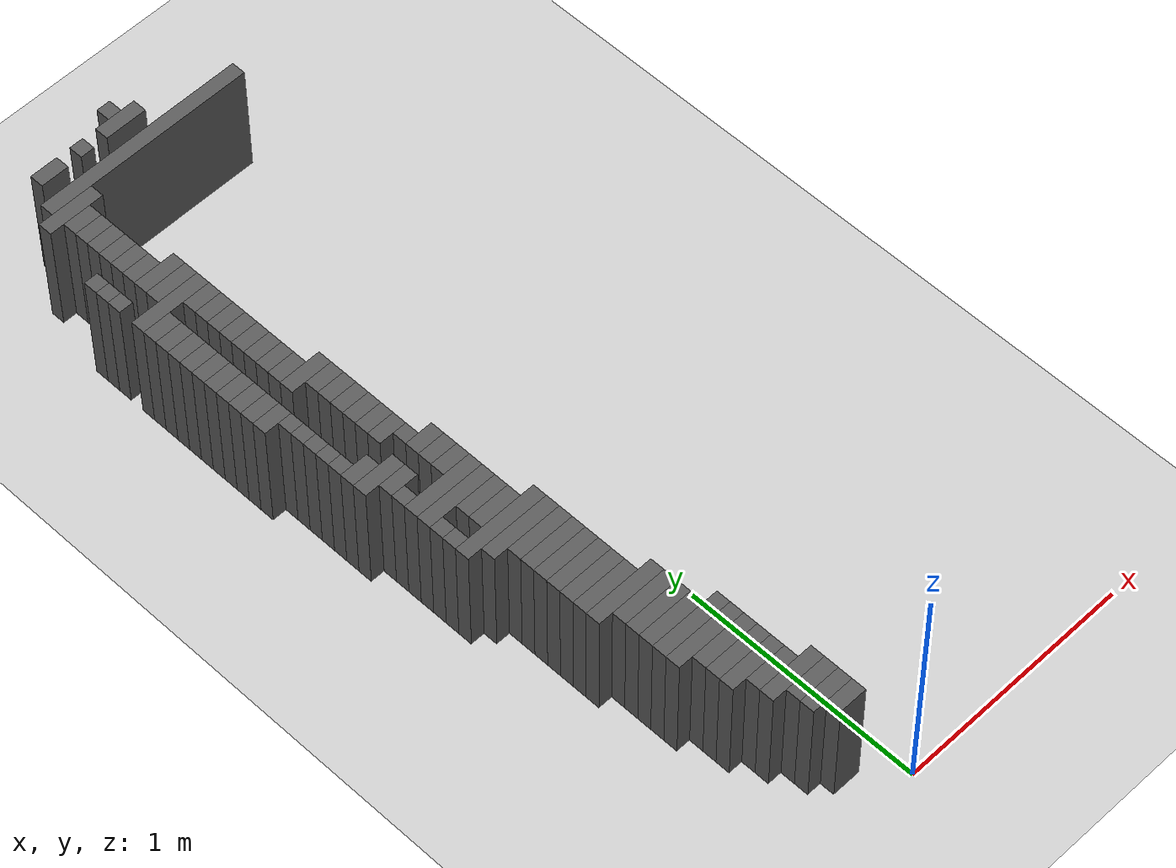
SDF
<sdf version="1.6">
 <world name="my_map">
  <include><uri>model://sun</uri></include>
  <model name="ground_plane">
   <static>true</static>
   <link name="link">
    <collision name="collision">
     <geometry><plane><normal>0 0 1</normal><size>20 20</size></plane></geometry>
    </collision>
    <visual name="visual">
     <geometry><plane><normal>0 0 1</normal><size>20 20</size></plane></geometry>
     <material>
      <script><uri>file://media/materials/scripts/gazebo.material</uri><name>Gazebo/Grey</name></script>
     </material>
    </visual>
   </link>
  </model>
  <model name="my_map_walls">
   <static>true</static>
   <link name="wall_015">
    <pose>-0.2100 3.6420 0.2500 0 0 0</pose>
    <collision name="collision"><geometry><box><size>0.0600 0.0600 0.5000</size></box></geometry></collision>
    <visual name="visual">
     <geometry><box><size>0.0600 0.0600 0.5000</size></box></geometry>
     <material><ambient>0.25 0.25 0.25 1</ambient><diffuse>0.35 0.35 0.35 1</diffuse></material>
    </visual>
   </link>
   <link name="wall_020">
    <pose>-0.5400 3.5820 0.2500 0 0 0</pose>
    <collision name="collision"><geometry><box><size>0.1200 0.0600 0.5000</size></box></geometry></collision>
    <visual name="visual">
     <geometry><box><size>0.1200 0.0600 0.5000</size></box></geometry>
     <material><ambient>0.25 0.25 0.25 1</ambient><diffuse>0.35 0.35 0.35 1</diffuse></material>
    </visual>
   </link>
   <link name="wall_021">
    <pose>-0.3900 3.5820 0.2500 0 0 0</pose>
    <collision name="collision"><geometry><box><size>0.0600 0.0600 0.5000</size></box></geometry></collision>
    <visual name="visual">
     <geometry><box><size>0.0600 0.0600 0.5000</size></box></geometry>
     <material><ambient>0.25 0.25 0.25 1</ambient><diffuse>0.35 0.35 0.35 1</diffuse></material>
    </visual>
   </link>
   <link name="wall_022">
    <pose>-0.2100 3.5820 0.2500 0 0 0</pose>
    <collision name="collision"><geometry><box><size>0.1800 0.0600 0.5000</size></box></geometry></collision>
    <visual name="visual">
     <geometry><box><size>0.1800 0.0600 0.5000</size></box></geometry>
     <material><ambient>0.25 0.25 0.25 1</ambient><diffuse>0.35 0.35 0.35 1</diffuse></material>
    </visual>
   </link>
   <link name="wall_029">
    <pose>-0.2100 3.4620 0.2500 0 0 0</pose>
    <collision name="collision"><geometry><box><size>0.9000 0.0600 0.5000</size></box></geometry></collision>
    <visual name="visual">
     <geometry><box><size>0.9000 0.0600 0.5000</size></box></geometry>
     <material><ambient>0.25 0.25 0.25 1</ambient><diffuse>0.35 0.35 0.35 1</diffuse></material>
    </visual>
   </link>
   <link name="wall_032">
    <pose>-0.6000 3.4020 0.2500 0 0 0</pose>
    <collision name="collision"><geometry><box><size>0.2400 0.0600 0.5000</size></box></geometry></collision>
    <visual name="visual">
     <geometry><box><size>0.2400 0.0600 0.5000</size></box></geometry>
     <material><ambient>0.25 0.25 0.25 1</ambient><diffuse>0.35 0.35 0.35 1</diffuse></material>
    </visual>
   </link>
   <link name="wall_035">
    <pose>-0.6000 3.3420 0.2500 0 0 0</pose>
    <collision name="collision"><geometry><box><size>0.1200 0.0600 0.5000</size></box></geometry></collision>
    <visual name="visual">
     <geometry><box><size>0.1200 0.0600 0.5000</size></box></geometry>
     <material><ambient>0.25 0.25 0.25 1</ambient><diffuse>0.35 0.35 0.35 1</diffuse></material>
    </visual>
   </link>
   <link name="wall_038">
    <pose>-0.6000 3.2820 0.2500 0 0 0</pose>
    <collision name="collision"><geometry><box><size>0.1200 0.0600 0.5000</size></box></geometry></collision>
    <visual name="visual">
     <geometry><box><size>0.1200 0.0600 0.5000</size></box></geometry>
     <material><ambient>0.25 0.25 0.25 1</ambient><diffuse>0.35 0.35 0.35 1</diffuse></material>
    </visual>
   </link>
   <link name="wall_041">
    <pose>-0.6000 3.2220 0.2500 0 0 0</pose>
    <collision name="collision"><geometry><box><size>0.1200 0.0600 0.5000</size></box></geometry></collision>
    <visual name="visual">
     <geometry><box><size>0.1200 0.0600 0.5000</size></box></geometry>
     <material><ambient>0.25 0.25 0.25 1</ambient><diffuse>0.35 0.35 0.35 1</diffuse></material>
    </visual>
   </link>
   <link name="wall_044">
    <pose>-0.6000 3.1620 0.2500 0 0 0</pose>
    <collision name="collision"><geometry><box><size>0.1200 0.0600 0.5000</size></box></geometry></collision>
    <visual name="visual">
     <geometry><box><size>0.1200 0.0600 0.5000</size></box></geometry>
     <material><ambient>0.25 0.25 0.25 1</ambient><diffuse>0.35 0.35 0.35 1</diffuse></material>
    </visual>
   </link>
   <link name="wall_046">
    <pose>-0.7500 3.1020 0.2500 0 0 0</pose>
    <collision name="collision"><geometry><box><size>0.0600 0.0600 0.5000</size></box></geometry></collision>
    <visual name="visual">
     <geometry><box><size>0.0600 0.0600 0.5000</size></box></geometry>
     <material><ambient>0.25 0.25 0.25 1</ambient><diffuse>0.35 0.35 0.35 1</diffuse></material>
    </visual>
   </link>
   <link name="wall_047">
    <pose>-0.6000 3.1020 0.2500 0 0 0</pose>
    <collision name="collision"><geometry><box><size>0.1200 0.0600 0.5000</size></box></geometry></collision>
    <visual name="visual">
     <geometry><box><size>0.1200 0.0600 0.5000</size></box></geometry>
     <material><ambient>0.25 0.25 0.25 1</ambient><diffuse>0.35 0.35 0.35 1</diffuse></material>
    </visual>
   </link>
   <link name="wall_049">
    <pose>-0.7500 3.0420 0.2500 0 0 0</pose>
    <collision name="collision"><geometry><box><size>0.0600 0.0600 0.5000</size></box></geometry></collision>
    <visual name="visual">
     <geometry><box><size>0.0600 0.0600 0.5000</size></box></geometry>
     <material><ambient>0.25 0.25 0.25 1</ambient><diffuse>0.35 0.35 0.35 1</diffuse></material>
    </visual>
   </link>
   <link name="wall_050">
    <pose>-0.6000 3.0420 0.2500 0 0 0</pose>
    <collision name="collision"><geometry><box><size>0.1200 0.0600 0.5000</size></box></geometry></collision>
    <visual name="visual">
     <geometry><box><size>0.1200 0.0600 0.5000</size></box></geometry>
     <material><ambient>0.25 0.25 0.25 1</ambient><diffuse>0.35 0.35 0.35 1</diffuse></material>
    </visual>
   </link>
   <link name="wall_052">
    <pose>-0.7500 2.9820 0.2500 0 0 0</pose>
    <collision name="collision"><geometry><box><size>0.0600 0.0600 0.5000</size></box></geometry></collision>
    <visual name="visual">
     <geometry><box><size>0.0600 0.0600 0.5000</size></box></geometry>
     <material><ambient>0.25 0.25 0.25 1</ambient><diffuse>0.35 0.35 0.35 1</diffuse></material>
    </visual>
   </link>
   <link name="wall_053">
    <pose>-0.5700 2.9820 0.2500 0 0 0</pose>
    <collision name="collision"><geometry><box><size>0.1800 0.0600 0.5000</size></box></geometry></collision>
    <visual name="visual">
     <geometry><box><size>0.1800 0.0600 0.5000</size></box></geometry>
     <material><ambient>0.25 0.25 0.25 1</ambient><diffuse>0.35 0.35 0.35 1</diffuse></material>
    </visual>
   </link>
   <link name="wall_055">
    <pose>-0.5700 2.9220 0.2500 0 0 0</pose>
    <collision name="collision"><geometry><box><size>0.1800 0.0600 0.5000</size></box></geometry></collision>
    <visual name="visual">
     <geometry><box><size>0.1800 0.0600 0.5000</size></box></geometry>
     <material><ambient>0.25 0.25 0.25 1</ambient><diffuse>0.35 0.35 0.35 1</diffuse></material>
    </visual>
   </link>
   <link name="wall_057">
    <pose>-0.6300 2.8620 0.2500 0 0 0</pose>
    <collision name="collision"><geometry><box><size>0.3000 0.0600 0.5000</size></box></geometry></collision>
    <visual name="visual">
     <geometry><box><size>0.3000 0.0600 0.5000</size></box></geometry>
     <material><ambient>0.25 0.25 0.25 1</ambient><diffuse>0.35 0.35 0.35 1</diffuse></material>
    </visual>
   </link>
   <link name="wall_060">
    <pose>-0.7200 2.8020 0.2500 0 0 0</pose>
    <collision name="collision"><geometry><box><size>0.1200 0.0600 0.5000</size></box></geometry></collision>
    <visual name="visual">
     <geometry><box><size>0.1200 0.0600 0.5000</size></box></geometry>
     <material><ambient>0.25 0.25 0.25 1</ambient><diffuse>0.35 0.35 0.35 1</diffuse></material>
    </visual>
   </link>
   <link name="wall_061">
    <pose>-0.5400 2.8020 0.2500 0 0 0</pose>
    <collision name="collision"><geometry><box><size>0.1200 0.0600 0.5000</size></box></geometry></collision>
    <visual name="visual">
     <geometry><box><size>0.1200 0.0600 0.5000</size></box></geometry>
     <material><ambient>0.25 0.25 0.25 1</ambient><diffuse>0.35 0.35 0.35 1</diffuse></material>
    </visual>
   </link>
   <link name="wall_064">
    <pose>-0.7200 2.7420 0.2500 0 0 0</pose>
    <collision name="collision"><geometry><box><size>0.1200 0.0600 0.5000</size></box></geometry></collision>
    <visual name="visual">
     <geometry><box><size>0.1200 0.0600 0.5000</size></box></geometry>
     <material><ambient>0.25 0.25 0.25 1</ambient><diffuse>0.35 0.35 0.35 1</diffuse></material>
    </visual>
   </link>
   <link name="wall_065">
    <pose>-0.5400 2.7420 0.2500 0 0 0</pose>
    <collision name="collision"><geometry><box><size>0.1200 0.0600 0.5000</size></box></geometry></collision>
    <visual name="visual">
     <geometry><box><size>0.1200 0.0600 0.5000</size></box></geometry>
     <material><ambient>0.25 0.25 0.25 1</ambient><diffuse>0.35 0.35 0.35 1</diffuse></material>
    </visual>
   </link>
   <link name="wall_068">
    <pose>-0.7200 2.6820 0.2500 0 0 0</pose>
    <collision name="collision"><geometry><box><size>0.1200 0.0600 0.5000</size></box></geometry></collision>
    <visual name="visual">
     <geometry><box><size>0.1200 0.0600 0.5000</size></box></geometry>
     <material><ambient>0.25 0.25 0.25 1</ambient><diffuse>0.35 0.35 0.35 1</diffuse></material>
    </visual>
   </link>
   <link name="wall_069">
    <pose>-0.5400 2.6820 0.2500 0 0 0</pose>
    <collision name="collision"><geometry><box><size>0.1200 0.0600 0.5000</size></box></geometry></collision>
    <visual name="visual">
     <geometry><box><size>0.1200 0.0600 0.5000</size></box></geometry>
     <material><ambient>0.25 0.25 0.25 1</ambient><diffuse>0.35 0.35 0.35 1</diffuse></material>
    </visual>
   </link>
   <link name="wall_073">
    <pose>-0.7200 2.6220 0.2500 0 0 0</pose>
    <collision name="collision"><geometry><box><size>0.1200 0.0600 0.5000</size></box></geometry></collision>
    <visual name="visual">
     <geometry><box><size>0.1200 0.0600 0.5000</size></box></geometry>
     <material><ambient>0.25 0.25 0.25 1</ambient><diffuse>0.35 0.35 0.35 1</diffuse></material>
    </visual>
   </link>
   <link name="wall_074">
    <pose>-0.5400 2.6220 0.2500 0 0 0</pose>
    <collision name="collision"><geometry><box><size>0.1200 0.0600 0.5000</size></box></geometry></collision>
    <visual name="visual">
     <geometry><box><size>0.1200 0.0600 0.5000</size></box></geometry>
     <material><ambient>0.25 0.25 0.25 1</ambient><diffuse>0.35 0.35 0.35 1</diffuse></material>
    </visual>
   </link>
   <link name="wall_078">
    <pose>-0.7200 2.5620 0.2500 0 0 0</pose>
    <collision name="collision"><geometry><box><size>0.1200 0.0600 0.5000</size></box></geometry></collision>
    <visual name="visual">
     <geometry><box><size>0.1200 0.0600 0.5000</size></box></geometry>
     <material><ambient>0.25 0.25 0.25 1</ambient><diffuse>0.35 0.35 0.35 1</diffuse></material>
    </visual>
   </link>
   <link name="wall_079">
    <pose>-0.5400 2.5620 0.2500 0 0 0</pose>
    <collision name="collision"><geometry><box><size>0.1200 0.0600 0.5000</size></box></geometry></collision>
    <visual name="visual">
     <geometry><box><size>0.1200 0.0600 0.5000</size></box></geometry>
     <material><ambient>0.25 0.25 0.25 1</ambient><diffuse>0.35 0.35 0.35 1</diffuse></material>
    </visual>
   </link>
   <link name="wall_082">
    <pose>-0.7200 2.5020 0.2500 0 0 0</pose>
    <collision name="collision"><geometry><box><size>0.1200 0.0600 0.5000</size></box></geometry></collision>
    <visual name="visual">
     <geometry><box><size>0.1200 0.0600 0.5000</size></box></geometry>
     <material><ambient>0.25 0.25 0.25 1</ambient><diffuse>0.35 0.35 0.35 1</diffuse></material>
    </visual>
   </link>
   <link name="wall_083">
    <pose>-0.5400 2.5020 0.2500 0 0 0</pose>
    <collision name="collision"><geometry><box><size>0.1200 0.0600 0.5000</size></box></geometry></collision>
    <visual name="visual">
     <geometry><box><size>0.1200 0.0600 0.5000</size></box></geometry>
     <material><ambient>0.25 0.25 0.25 1</ambient><diffuse>0.35 0.35 0.35 1</diffuse></material>
    </visual>
   </link>
   <link name="wall_086">
    <pose>-0.7200 2.4420 0.2500 0 0 0</pose>
    <collision name="collision"><geometry><box><size>0.1200 0.0600 0.5000</size></box></geometry></collision>
    <visual name="visual">
     <geometry><box><size>0.1200 0.0600 0.5000</size></box></geometry>
     <material><ambient>0.25 0.25 0.25 1</ambient><diffuse>0.35 0.35 0.35 1</diffuse></material>
    </visual>
   </link>
   <link name="wall_087">
    <pose>-0.5400 2.4420 0.2500 0 0 0</pose>
    <collision name="collision"><geometry><box><size>0.1200 0.0600 0.5000</size></box></geometry></collision>
    <visual name="visual">
     <geometry><box><size>0.1200 0.0600 0.5000</size></box></geometry>
     <material><ambient>0.25 0.25 0.25 1</ambient><diffuse>0.35 0.35 0.35 1</diffuse></material>
    </visual>
   </link>
   <link name="wall_090">
    <pose>-0.7200 2.3820 0.2500 0 0 0</pose>
    <collision name="collision"><geometry><box><size>0.1200 0.0600 0.5000</size></box></geometry></collision>
    <visual name="visual">
     <geometry><box><size>0.1200 0.0600 0.5000</size></box></geometry>
     <material><ambient>0.25 0.25 0.25 1</ambient><diffuse>0.35 0.35 0.35 1</diffuse></material>
    </visual>
   </link>
   <link name="wall_091">
    <pose>-0.5400 2.3820 0.2500 0 0 0</pose>
    <collision name="collision"><geometry><box><size>0.1200 0.0600 0.5000</size></box></geometry></collision>
    <visual name="visual">
     <geometry><box><size>0.1200 0.0600 0.5000</size></box></geometry>
     <material><ambient>0.25 0.25 0.25 1</ambient><diffuse>0.35 0.35 0.35 1</diffuse></material>
    </visual>
   </link>
   <link name="wall_094">
    <pose>-0.7200 2.3220 0.2500 0 0 0</pose>
    <collision name="collision"><geometry><box><size>0.1200 0.0600 0.5000</size></box></geometry></collision>
    <visual name="visual">
     <geometry><box><size>0.1200 0.0600 0.5000</size></box></geometry>
     <material><ambient>0.25 0.25 0.25 1</ambient><diffuse>0.35 0.35 0.35 1</diffuse></material>
    </visual>
   </link>
   <link name="wall_095">
    <pose>-0.5100 2.3220 0.2500 0 0 0</pose>
    <collision name="collision"><geometry><box><size>0.1800 0.0600 0.5000</size></box></geometry></collision>
    <visual name="visual">
     <geometry><box><size>0.1800 0.0600 0.5000</size></box></geometry>
     <material><ambient>0.25 0.25 0.25 1</ambient><diffuse>0.35 0.35 0.35 1</diffuse></material>
    </visual>
   </link>
   <link name="wall_098">
    <pose>-0.7200 2.2620 0.2500 0 0 0</pose>
    <collision name="collision"><geometry><box><size>0.1200 0.0600 0.5000</size></box></geometry></collision>
    <visual name="visual">
     <geometry><box><size>0.1200 0.0600 0.5000</size></box></geometry>
     <material><ambient>0.25 0.25 0.25 1</ambient><diffuse>0.35 0.35 0.35 1</diffuse></material>
    </visual>
   </link>
   <link name="wall_099">
    <pose>-0.4800 2.2620 0.2500 0 0 0</pose>
    <collision name="collision"><geometry><box><size>0.1200 0.0600 0.5000</size></box></geometry></collision>
    <visual name="visual">
     <geometry><box><size>0.1200 0.0600 0.5000</size></box></geometry>
     <material><ambient>0.25 0.25 0.25 1</ambient><diffuse>0.35 0.35 0.35 1</diffuse></material>
    </visual>
   </link>
   <link name="wall_102">
    <pose>-0.6900 2.2020 0.2500 0 0 0</pose>
    <collision name="collision"><geometry><box><size>0.0600 0.0600 0.5000</size></box></geometry></collision>
    <visual name="visual">
     <geometry><box><size>0.0600 0.0600 0.5000</size></box></geometry>
     <material><ambient>0.25 0.25 0.25 1</ambient><diffuse>0.35 0.35 0.35 1</diffuse></material>
    </visual>
   </link>
   <link name="wall_103">
    <pose>-0.4800 2.2020 0.2500 0 0 0</pose>
    <collision name="collision"><geometry><box><size>0.1200 0.0600 0.5000</size></box></geometry></collision>
    <visual name="visual">
     <geometry><box><size>0.1200 0.0600 0.5000</size></box></geometry>
     <material><ambient>0.25 0.25 0.25 1</ambient><diffuse>0.35 0.35 0.35 1</diffuse></material>
    </visual>
   </link>
   <link name="wall_106">
    <pose>-0.6900 2.1420 0.2500 0 0 0</pose>
    <collision name="collision"><geometry><box><size>0.0600 0.0600 0.5000</size></box></geometry></collision>
    <visual name="visual">
     <geometry><box><size>0.0600 0.0600 0.5000</size></box></geometry>
     <material><ambient>0.25 0.25 0.25 1</ambient><diffuse>0.35 0.35 0.35 1</diffuse></material>
    </visual>
   </link>
   <link name="wall_107">
    <pose>-0.4800 2.1420 0.2500 0 0 0</pose>
    <collision name="collision"><geometry><box><size>0.1200 0.0600 0.5000</size></box></geometry></collision>
    <visual name="visual">
     <geometry><box><size>0.1200 0.0600 0.5000</size></box></geometry>
     <material><ambient>0.25 0.25 0.25 1</ambient><diffuse>0.35 0.35 0.35 1</diffuse></material>
    </visual>
   </link>
   <link name="wall_110">
    <pose>-0.6900 2.0820 0.2500 0 0 0</pose>
    <collision name="collision"><geometry><box><size>0.0600 0.0600 0.5000</size></box></geometry></collision>
    <visual name="visual">
     <geometry><box><size>0.0600 0.0600 0.5000</size></box></geometry>
     <material><ambient>0.25 0.25 0.25 1</ambient><diffuse>0.35 0.35 0.35 1</diffuse></material>
    </visual>
   </link>
   <link name="wall_111">
    <pose>-0.4800 2.0820 0.2500 0 0 0</pose>
    <collision name="collision"><geometry><box><size>0.1200 0.0600 0.5000</size></box></geometry></collision>
    <visual name="visual">
     <geometry><box><size>0.1200 0.0600 0.5000</size></box></geometry>
     <material><ambient>0.25 0.25 0.25 1</ambient><diffuse>0.35 0.35 0.35 1</diffuse></material>
    </visual>
   </link>
   <link name="wall_114">
    <pose>-0.6900 2.0220 0.2500 0 0 0</pose>
    <collision name="collision"><geometry><box><size>0.0600 0.0600 0.5000</size></box></geometry></collision>
    <visual name="visual">
     <geometry><box><size>0.0600 0.0600 0.5000</size></box></geometry>
     <material><ambient>0.25 0.25 0.25 1</ambient><diffuse>0.35 0.35 0.35 1</diffuse></material>
    </visual>
   </link>
   <link name="wall_115">
    <pose>-0.4800 2.0220 0.2500 0 0 0</pose>
    <collision name="collision"><geometry><box><size>0.1200 0.0600 0.5000</size></box></geometry></collision>
    <visual name="visual">
     <geometry><box><size>0.1200 0.0600 0.5000</size></box></geometry>
     <material><ambient>0.25 0.25 0.25 1</ambient><diffuse>0.35 0.35 0.35 1</diffuse></material>
    </visual>
   </link>
   <link name="wall_118">
    <pose>-0.6900 1.9620 0.2500 0 0 0</pose>
    <collision name="collision"><geometry><box><size>0.0600 0.0600 0.5000</size></box></geometry></collision>
    <visual name="visual">
     <geometry><box><size>0.0600 0.0600 0.5000</size></box></geometry>
     <material><ambient>0.25 0.25 0.25 1</ambient><diffuse>0.35 0.35 0.35 1</diffuse></material>
    </visual>
   </link>
   <link name="wall_119">
    <pose>-0.4800 1.9620 0.2500 0 0 0</pose>
    <collision name="collision"><geometry><box><size>0.1200 0.0600 0.5000</size></box></geometry></collision>
    <visual name="visual">
     <geometry><box><size>0.1200 0.0600 0.5000</size></box></geometry>
     <material><ambient>0.25 0.25 0.25 1</ambient><diffuse>0.35 0.35 0.35 1</diffuse></material>
    </visual>
   </link>
   <link name="wall_122">
    <pose>-0.6600 1.9020 0.2500 0 0 0</pose>
    <collision name="collision"><geometry><box><size>0.1200 0.0600 0.5000</size></box></geometry></collision>
    <visual name="visual">
     <geometry><box><size>0.1200 0.0600 0.5000</size></box></geometry>
     <material><ambient>0.25 0.25 0.25 1</ambient><diffuse>0.35 0.35 0.35 1</diffuse></material>
    </visual>
   </link>
   <link name="wall_123">
    <pose>-0.4500 1.9020 0.2500 0 0 0</pose>
    <collision name="collision"><geometry><box><size>0.0600 0.0600 0.5000</size></box></geometry></collision>
    <visual name="visual">
     <geometry><box><size>0.0600 0.0600 0.5000</size></box></geometry>
     <material><ambient>0.25 0.25 0.25 1</ambient><diffuse>0.35 0.35 0.35 1</diffuse></material>
    </visual>
   </link>
   <link name="wall_126">
    <pose>-0.6300 1.8420 0.2500 0 0 0</pose>
    <collision name="collision"><geometry><box><size>0.1800 0.0600 0.5000</size></box></geometry></collision>
    <visual name="visual">
     <geometry><box><size>0.1800 0.0600 0.5000</size></box></geometry>
     <material><ambient>0.25 0.25 0.25 1</ambient><diffuse>0.35 0.35 0.35 1</diffuse></material>
    </visual>
   </link>
   <link name="wall_127">
    <pose>-0.4200 1.8420 0.2500 0 0 0</pose>
    <collision name="collision"><geometry><box><size>0.1200 0.0600 0.5000</size></box></geometry></collision>
    <visual name="visual">
     <geometry><box><size>0.1200 0.0600 0.5000</size></box></geometry>
     <material><ambient>0.25 0.25 0.25 1</ambient><diffuse>0.35 0.35 0.35 1</diffuse></material>
    </visual>
   </link>
   <link name="wall_131">
    <pose>-0.6000 1.7820 0.2500 0 0 0</pose>
    <collision name="collision"><geometry><box><size>0.1200 0.0600 0.5000</size></box></geometry></collision>
    <visual name="visual">
     <geometry><box><size>0.1200 0.0600 0.5000</size></box></geometry>
     <material><ambient>0.25 0.25 0.25 1</ambient><diffuse>0.35 0.35 0.35 1</diffuse></material>
    </visual>
   </link>
   <link name="wall_132">
    <pose>-0.4200 1.7820 0.2500 0 0 0</pose>
    <collision name="collision"><geometry><box><size>0.1200 0.0600 0.5000</size></box></geometry></collision>
    <visual name="visual">
     <geometry><box><size>0.1200 0.0600 0.5000</size></box></geometry>
     <material><ambient>0.25 0.25 0.25 1</ambient><diffuse>0.35 0.35 0.35 1</diffuse></material>
    </visual>
   </link>
   <link name="wall_136">
    <pose>-0.6300 1.7220 0.2500 0 0 0</pose>
    <collision name="collision"><geometry><box><size>0.0600 0.0600 0.5000</size></box></geometry></collision>
    <visual name="visual">
     <geometry><box><size>0.0600 0.0600 0.5000</size></box></geometry>
     <material><ambient>0.25 0.25 0.25 1</ambient><diffuse>0.35 0.35 0.35 1</diffuse></material>
    </visual>
   </link>
   <link name="wall_137">
    <pose>-0.4200 1.7220 0.2500 0 0 0</pose>
    <collision name="collision"><geometry><box><size>0.1200 0.0600 0.5000</size></box></geometry></collision>
    <visual name="visual">
     <geometry><box><size>0.1200 0.0600 0.5000</size></box></geometry>
     <material><ambient>0.25 0.25 0.25 1</ambient><diffuse>0.35 0.35 0.35 1</diffuse></material>
    </visual>
   </link>
   <link name="wall_141">
    <pose>-0.5100 1.6620 0.2500 0 0 0</pose>
    <collision name="collision"><geometry><box><size>0.3000 0.0600 0.5000</size></box></geometry></collision>
    <visual name="visual">
     <geometry><box><size>0.3000 0.0600 0.5000</size></box></geometry>
     <material><ambient>0.25 0.25 0.25 1</ambient><diffuse>0.35 0.35 0.35 1</diffuse></material>
    </visual>
   </link>
   <link name="wall_145">
    <pose>-0.5100 1.6020 0.2500 0 0 0</pose>
    <collision name="collision"><geometry><box><size>0.3000 0.0600 0.5000</size></box></geometry></collision>
    <visual name="visual">
     <geometry><box><size>0.3000 0.0600 0.5000</size></box></geometry>
     <material><ambient>0.25 0.25 0.25 1</ambient><diffuse>0.35 0.35 0.35 1</diffuse></material>
    </visual>
   </link>
   <link name="wall_149">
    <pose>-0.6300 1.5420 0.2500 0 0 0</pose>
    <collision name="collision"><geometry><box><size>0.0600 0.0600 0.5000</size></box></geometry></collision>
    <visual name="visual">
     <geometry><box><size>0.0600 0.0600 0.5000</size></box></geometry>
     <material><ambient>0.25 0.25 0.25 1</ambient><diffuse>0.35 0.35 0.35 1</diffuse></material>
    </visual>
   </link>
   <link name="wall_150">
    <pose>-0.4500 1.5420 0.2500 0 0 0</pose>
    <collision name="collision"><geometry><box><size>0.1800 0.0600 0.5000</size></box></geometry></collision>
    <visual name="visual">
     <geometry><box><size>0.1800 0.0600 0.5000</size></box></geometry>
     <material><ambient>0.25 0.25 0.25 1</ambient><diffuse>0.35 0.35 0.35 1</diffuse></material>
    </visual>
   </link>
   <link name="wall_154">
    <pose>-0.6300 1.4820 0.2500 0 0 0</pose>
    <collision name="collision"><geometry><box><size>0.0600 0.0600 0.5000</size></box></geometry></collision>
    <visual name="visual">
     <geometry><box><size>0.0600 0.0600 0.5000</size></box></geometry>
     <material><ambient>0.25 0.25 0.25 1</ambient><diffuse>0.35 0.35 0.35 1</diffuse></material>
    </visual>
   </link>
   <link name="wall_155">
    <pose>-0.4500 1.4820 0.2500 0 0 0</pose>
    <collision name="collision"><geometry><box><size>0.1800 0.0600 0.5000</size></box></geometry></collision>
    <visual name="visual">
     <geometry><box><size>0.1800 0.0600 0.5000</size></box></geometry>
     <material><ambient>0.25 0.25 0.25 1</ambient><diffuse>0.35 0.35 0.35 1</diffuse></material>
    </visual>
   </link>
   <link name="wall_158">
    <pose>-0.4800 1.4220 0.2500 0 0 0</pose>
    <collision name="collision"><geometry><box><size>0.3600 0.0600 0.5000</size></box></geometry></collision>
    <visual name="visual">
     <geometry><box><size>0.3600 0.0600 0.5000</size></box></geometry>
     <material><ambient>0.25 0.25 0.25 1</ambient><diffuse>0.35 0.35 0.35 1</diffuse></material>
    </visual>
   </link>
   <link name="wall_161">
    <pose>-0.4500 1.3620 0.2500 0 0 0</pose>
    <collision name="collision"><geometry><box><size>0.3000 0.0600 0.5000</size></box></geometry></collision>
    <visual name="visual">
     <geometry><box><size>0.3000 0.0600 0.5000</size></box></geometry>
     <material><ambient>0.25 0.25 0.25 1</ambient><diffuse>0.35 0.35 0.35 1</diffuse></material>
    </visual>
   </link>
   <link name="wall_164">
    <pose>-0.4200 1.3020 0.2500 0 0 0</pose>
    <collision name="collision"><geometry><box><size>0.2400 0.0600 0.5000</size></box></geometry></collision>
    <visual name="visual">
     <geometry><box><size>0.2400 0.0600 0.5000</size></box></geometry>
     <material><ambient>0.25 0.25 0.25 1</ambient><diffuse>0.35 0.35 0.35 1</diffuse></material>
    </visual>
   </link>
   <link name="wall_168">
    <pose>-0.4200 1.2420 0.2500 0 0 0</pose>
    <collision name="collision"><geometry><box><size>0.2400 0.0600 0.5000</size></box></geometry></collision>
    <visual name="visual">
     <geometry><box><size>0.2400 0.0600 0.5000</size></box></geometry>
     <material><ambient>0.25 0.25 0.25 1</ambient><diffuse>0.35 0.35 0.35 1</diffuse></material>
    </visual>
   </link>
   <link name="wall_171">
    <pose>-0.4200 1.1820 0.2500 0 0 0</pose>
    <collision name="collision"><geometry><box><size>0.2400 0.0600 0.5000</size></box></geometry></collision>
    <visual name="visual">
     <geometry><box><size>0.2400 0.0600 0.5000</size></box></geometry>
     <material><ambient>0.25 0.25 0.25 1</ambient><diffuse>0.35 0.35 0.35 1</diffuse></material>
    </visual>
   </link>
   <link name="wall_174">
    <pose>-0.4200 1.1220 0.2500 0 0 0</pose>
    <collision name="collision"><geometry><box><size>0.2400 0.0600 0.5000</size></box></geometry></collision>
    <visual name="visual">
     <geometry><box><size>0.2400 0.0600 0.5000</size></box></geometry>
     <material><ambient>0.25 0.25 0.25 1</ambient><diffuse>0.35 0.35 0.35 1</diffuse></material>
    </visual>
   </link>
   <link name="wall_177">
    <pose>-0.4200 1.0620 0.2500 0 0 0</pose>
    <collision name="collision"><geometry><box><size>0.2400 0.0600 0.5000</size></box></geometry></collision>
    <visual name="visual">
     <geometry><box><size>0.2400 0.0600 0.5000</size></box></geometry>
     <material><ambient>0.25 0.25 0.25 1</ambient><diffuse>0.35 0.35 0.35 1</diffuse></material>
    </visual>
   </link>
   <link name="wall_181">
    <pose>-0.4200 1.0020 0.2500 0 0 0</pose>
    <collision name="collision"><geometry><box><size>0.2400 0.0600 0.5000</size></box></geometry></collision>
    <visual name="visual">
     <geometry><box><size>0.2400 0.0600 0.5000</size></box></geometry>
     <material><ambient>0.25 0.25 0.25 1</ambient><diffuse>0.35 0.35 0.35 1</diffuse></material>
    </visual>
   </link>
   <link name="wall_186">
    <pose>-0.3900 0.9420 0.2500 0 0 0</pose>
    <collision name="collision"><geometry><box><size>0.3000 0.0600 0.5000</size></box></geometry></collision>
    <visual name="visual">
     <geometry><box><size>0.3000 0.0600 0.5000</size></box></geometry>
     <material><ambient>0.25 0.25 0.25 1</ambient><diffuse>0.35 0.35 0.35 1</diffuse></material>
    </visual>
   </link>
   <link name="wall_189">
    <pose>-0.3600 0.8820 0.2500 0 0 0</pose>
    <collision name="collision"><geometry><box><size>0.2400 0.0600 0.5000</size></box></geometry></collision>
    <visual name="visual">
     <geometry><box><size>0.2400 0.0600 0.5000</size></box></geometry>
     <material><ambient>0.25 0.25 0.25 1</ambient><diffuse>0.35 0.35 0.35 1</diffuse></material>
    </visual>
   </link>
   <link name="wall_192">
    <pose>-0.3600 0.8220 0.2500 0 0 0</pose>
    <collision name="collision"><geometry><box><size>0.2400 0.0600 0.5000</size></box></geometry></collision>
    <visual name="visual">
     <geometry><box><size>0.2400 0.0600 0.5000</size></box></geometry>
     <material><ambient>0.25 0.25 0.25 1</ambient><diffuse>0.35 0.35 0.35 1</diffuse></material>
    </visual>
   </link>
   <link name="wall_194">
    <pose>-0.3600 0.7620 0.2500 0 0 0</pose>
    <collision name="collision"><geometry><box><size>0.2400 0.0600 0.5000</size></box></geometry></collision>
    <visual name="visual">
     <geometry><box><size>0.2400 0.0600 0.5000</size></box></geometry>
     <material><ambient>0.25 0.25 0.25 1</ambient><diffuse>0.35 0.35 0.35 1</diffuse></material>
    </visual>
   </link>
   <link name="wall_196">
    <pose>-0.3300 0.7020 0.2500 0 0 0</pose>
    <collision name="collision"><geometry><box><size>0.3000 0.0600 0.5000</size></box></geometry></collision>
    <visual name="visual">
     <geometry><box><size>0.3000 0.0600 0.5000</size></box></geometry>
     <material><ambient>0.25 0.25 0.25 1</ambient><diffuse>0.35 0.35 0.35 1</diffuse></material>
    </visual>
   </link>
   <link name="wall_198">
    <pose>-0.3300 0.6420 0.2500 0 0 0</pose>
    <collision name="collision"><geometry><box><size>0.3000 0.0600 0.5000</size></box></geometry></collision>
    <visual name="visual">
     <geometry><box><size>0.3000 0.0600 0.5000</size></box></geometry>
     <material><ambient>0.25 0.25 0.25 1</ambient><diffuse>0.35 0.35 0.35 1</diffuse></material>
    </visual>
   </link>
   <link name="wall_201">
    <pose>-0.3000 0.5820 0.2500 0 0 0</pose>
    <collision name="collision"><geometry><box><size>0.2400 0.0600 0.5000</size></box></geometry></collision>
    <visual name="visual">
     <geometry><box><size>0.2400 0.0600 0.5000</size></box></geometry>
     <material><ambient>0.25 0.25 0.25 1</ambient><diffuse>0.35 0.35 0.35 1</diffuse></material>
    </visual>
   </link>
   <link name="wall_204">
    <pose>-0.3000 0.5220 0.2500 0 0 0</pose>
    <collision name="collision"><geometry><box><size>0.2400 0.0600 0.5000</size></box></geometry></collision>
    <visual name="visual">
     <geometry><box><size>0.2400 0.0600 0.5000</size></box></geometry>
     <material><ambient>0.25 0.25 0.25 1</ambient><diffuse>0.35 0.35 0.35 1</diffuse></material>
    </visual>
   </link>
   <link name="wall_207">
    <pose>-0.3000 0.4620 0.2500 0 0 0</pose>
    <collision name="collision"><geometry><box><size>0.2400 0.0600 0.5000</size></box></geometry></collision>
    <visual name="visual">
     <geometry><box><size>0.2400 0.0600 0.5000</size></box></geometry>
     <material><ambient>0.25 0.25 0.25 1</ambient><diffuse>0.35 0.35 0.35 1</diffuse></material>
    </visual>
   </link>
   <link name="wall_210">
    <pose>-0.2700 0.4020 0.2500 0 0 0</pose>
    <collision name="collision"><geometry><box><size>0.1800 0.0600 0.5000</size></box></geometry></collision>
    <visual name="visual">
     <geometry><box><size>0.1800 0.0600 0.5000</size></box></geometry>
     <material><ambient>0.25 0.25 0.25 1</ambient><diffuse>0.35 0.35 0.35 1</diffuse></material>
    </visual>
   </link>
   <link name="wall_213">
    <pose>-0.2400 0.3420 0.2500 0 0 0</pose>
    <collision name="collision"><geometry><box><size>0.2400 0.0600 0.5000</size></box></geometry></collision>
    <visual name="visual">
     <geometry><box><size>0.2400 0.0600 0.5000</size></box></geometry>
     <material><ambient>0.25 0.25 0.25 1</ambient><diffuse>0.35 0.35 0.35 1</diffuse></material>
    </visual>
   </link>
   <link name="wall_216">
    <pose>-0.2100 0.2820 0.2500 0 0 0</pose>
    <collision name="collision"><geometry><box><size>0.1800 0.0600 0.5000</size></box></geometry></collision>
    <visual name="visual">
     <geometry><box><size>0.1800 0.0600 0.5000</size></box></geometry>
     <material><ambient>0.25 0.25 0.25 1</ambient><diffuse>0.35 0.35 0.35 1</diffuse></material>
    </visual>
   </link>
   <link name="wall_219">
    <pose>-0.2100 0.2220 0.2500 0 0 0</pose>
    <collision name="collision"><geometry><box><size>0.1800 0.0600 0.5000</size></box></geometry></collision>
    <visual name="visual">
     <geometry><box><size>0.1800 0.0600 0.5000</size></box></geometry>
     <material><ambient>0.25 0.25 0.25 1</ambient><diffuse>0.35 0.35 0.35 1</diffuse></material>
    </visual>
   </link>
   <link name="wall_224">
    <pose>-0.1800 0.1620 0.2500 0 0 0</pose>
    <collision name="collision"><geometry><box><size>0.1200 0.0600 0.5000</size></box></geometry></collision>
    <visual name="visual">
     <geometry><box><size>0.1200 0.0600 0.5000</size></box></geometry>
     <material><ambient>0.25 0.25 0.25 1</ambient><diffuse>0.35 0.35 0.35 1</diffuse></material>
    </visual>
   </link>
  </model>
 </world>
</sdf>
